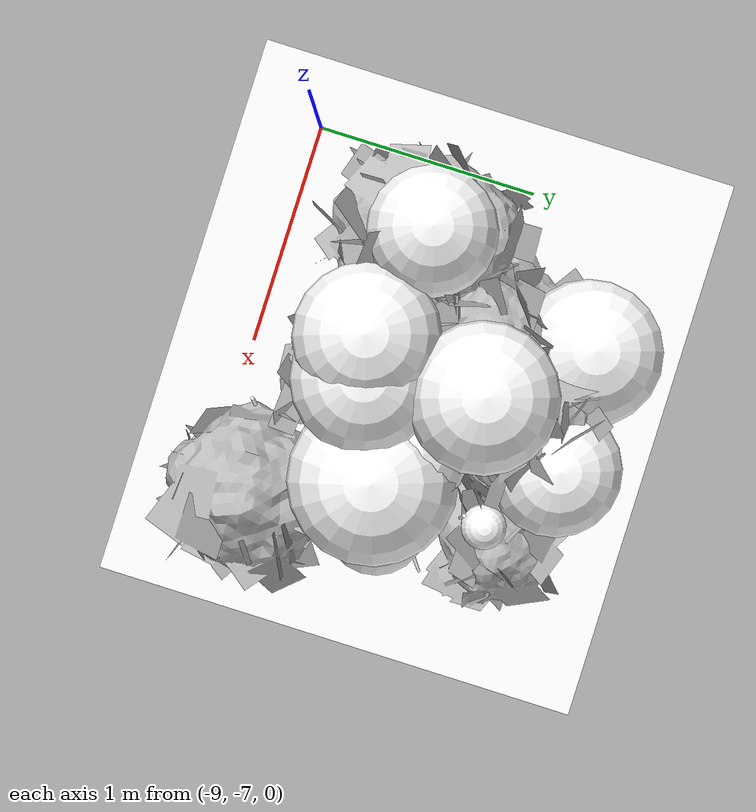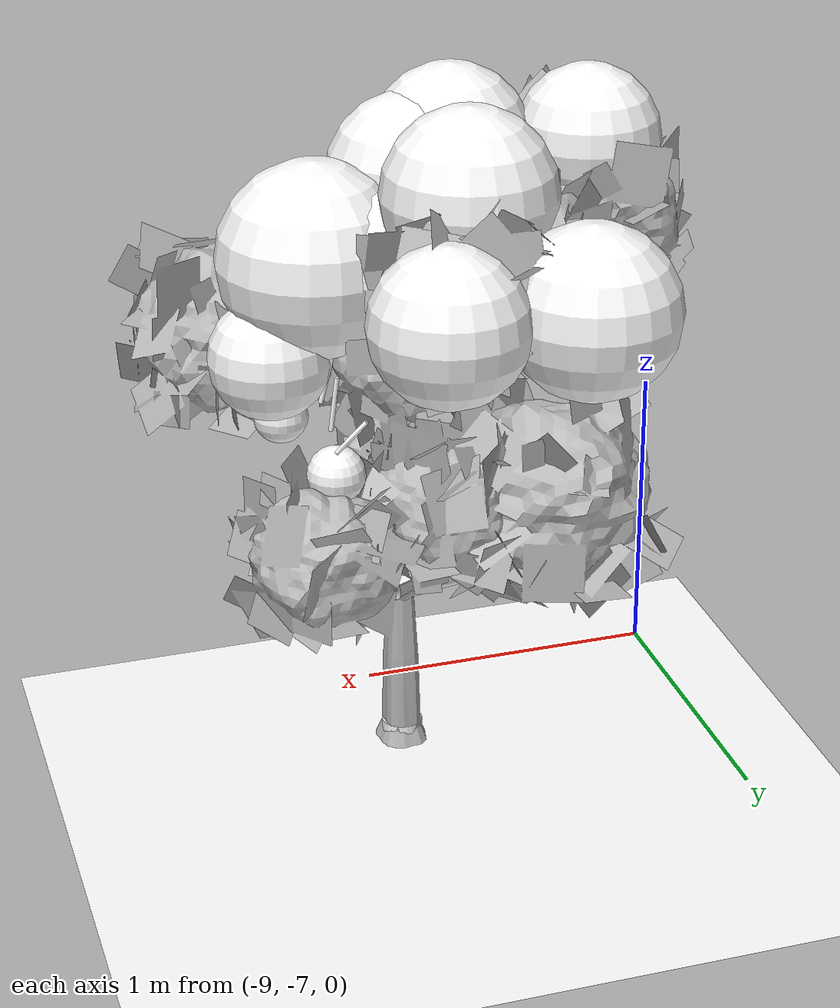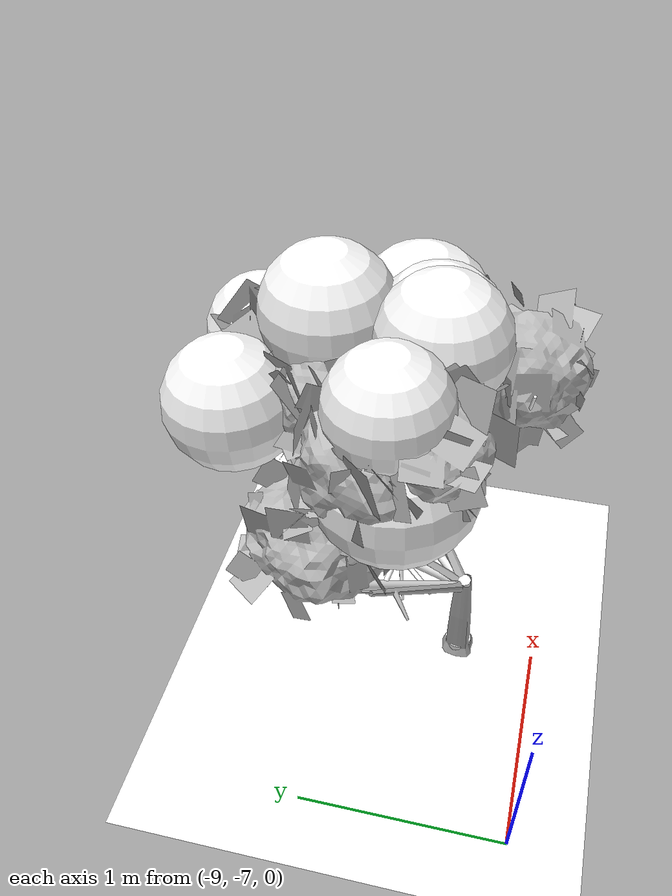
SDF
<sdf version="1.11">
 <world name="peach_orchard">
  <model name="ground">
   <static>true</static>
   <link name="link">
    <visual name="soil">
     <geometry><plane><normal>0 0 1</normal><size>32 22</size></plane></geometry>
     <material>
      <ambient>1 1 1 1</ambient>
      <diffuse>1 1 1 1</diffuse>
      <specular>0.1 0.1 0.1 1</specular>
      <pbr>
       <metal>
        <albedo_map>textures/soil_albedo.png</albedo_map>
        <normal_map type="tangent">textures/soil_normal.png</normal_map>
        <roughness>0.95</roughness>
        <metalness>0</metalness>
       </metal>
      </pbr>
     </material>
    </visual>
    <collision name="c_soil">
     <geometry><plane><normal>0 0 1</normal><size>32 22</size></plane></geometry>
    </collision>
   </link>
  </model>
  <model name="tree_r0_t0">
   <pose>-8 -6.6 0 0 0 0</pose>
   <static>true</static>
   <link name="link">
    <visual name="tree_mesh">
     <pose>0 0 0 0 0 0.00424783</pose>
     <geometry>
      <mesh><uri>model://peach_sim/meshes/peach_tree_a.glb</uri><scale>1.01858 1.01858 1.01858</scale></mesh>
     </geometry>
    </visual>
    <visual name="trunk_0">
     <pose>0 0 0.163314 0 0 0</pose>
     <geometry><cylinder><radius>0.0460757</radius><length>0.326629</length></cylinder></geometry>
     <material>
      <ambient>1 1 1 1</ambient>
      <diffuse>1 1 1 1</diffuse>
      <specular>0.1 0.1 0.1 1</specular>
      <pbr>
       <metal>
        <albedo_map>textures/bark_albedo.png</albedo_map>
        <normal_map type="tangent">textures/bark_normal.png</normal_map>
        <roughness>0.9</roughness>
        <metalness>0</metalness>
       </metal>
      </pbr>
     </material>
    </visual>
    <collision name="c_trunk_0">
     <pose>0 0 0.163314 0 0 0</pose>
     <geometry><cylinder><radius>0.0460757</radius><length>0.326629</length></cylinder></geometry>
    </collision>
    <visual name="trunk_1">
     <pose>0 0 0.46025 0 0 0</pose>
     <geometry><cylinder><radius>0.0331745</radius><length>0.267242</length></cylinder></geometry>
     <material>
      <ambient>1 1 1 1</ambient>
      <diffuse>1 1 1 1</diffuse>
      <specular>0.1 0.1 0.1 1</specular>
      <pbr>
       <metal>
        <albedo_map>textures/bark_albedo.png</albedo_map>
        <normal_map type="tangent">textures/bark_normal.png</normal_map>
        <roughness>0.9</roughness>
        <metalness>0</metalness>
       </metal>
      </pbr>
     </material>
    </visual>
    <collision name="c_trunk_1">
     <pose>0 0 0.46025 0 0 0</pose>
     <geometry><cylinder><radius>0.0331745</radius><length>0.267242</length></cylinder></geometry>
    </collision>
    <visual name="root_flare">
     <pose>0 0 0.035 0 0 0</pose>
     <geometry><cylinder><radius>0.0668097</radius><length>0.07</length></cylinder></geometry>
     <material>
      <ambient>1 1 1 1</ambient>
      <diffuse>1 1 1 1</diffuse>
      <specular>0.1 0.1 0.1 1</specular>
      <pbr>
       <metal>
        <albedo_map>textures/bark_albedo.png</albedo_map>
        <normal_map type="tangent">textures/bark_normal.png</normal_map>
        <roughness>0.95</roughness>
        <metalness>0</metalness>
       </metal>
      </pbr>
     </material>
    </visual>
    <visual name="scaffold_0">
     <pose>-0.0405091 0.339771 0.764963 0 1.00229 1.68946</pose>
     <geometry><cylinder><radius>0.022</radius><length>0.812089</length></cylinder></geometry>
     <material>
      <ambient>1 1 1 1</ambient>
      <diffuse>1 1 1 1</diffuse>
      <specular>0.1 0.1 0.1 1</specular>
      <pbr>
       <metal>
        <albedo_map>textures/bark_albedo.png</albedo_map>
        <normal_map type="tangent">textures/bark_normal.png</normal_map>
        <roughness>0.9</roughness>
        <metalness>0</metalness>
       </metal>
      </pbr>
     </material>
    </visual>
    <collision name="c_scaffold_0">
     <pose>-0.0405091 0.339771 0.764963 0 1.00229 1.68946</pose>
     <geometry><cylinder><radius>0.022</radius><length>0.812089</length></cylinder></geometry>
    </collision>
    <visual name="branchlet_0_0">
     <pose>-0.112781 0.222014 0.727966 0 1.73849 -2.26043</pose>
     <geometry><cylinder><radius>0.012</radius><length>0.240414</length></cylinder></geometry>
     <material>
      <ambient>1 1 1 1</ambient>
      <diffuse>1 1 1 1</diffuse>
      <specular>0.1 0.1 0.1 1</specular>
      <pbr>
       <metal>
        <albedo_map>textures/bark_albedo.png</albedo_map>
        <normal_map type="tangent">textures/bark_normal.png</normal_map>
        <roughness>0.9</roughness>
        <metalness>0</metalness>
       </metal>
      </pbr>
     </material>
    </visual>
    <visual name="branchlet_0_1">
     <pose>-0.0352857 0.490804 1.02807 0 0.147237 -0.186205</pose>
     <geometry><cylinder><radius>0.012</radius><length>0.32967</length></cylinder></geometry>
     <material>
      <ambient>1 1 1 1</ambient>
      <diffuse>1 1 1 1</diffuse>
      <specular>0.1 0.1 0.1 1</specular>
      <pbr>
       <metal>
        <albedo_map>textures/bark_albedo.png</albedo_map>
        <normal_map type="tangent">textures/bark_normal.png</normal_map>
        <roughness>0.9</roughness>
        <metalness>0</metalness>
       </metal>
      </pbr>
     </material>
    </visual>
    <visual name="branchlet_0_2">
     <pose>-0.0392614 0.322034 0.909342 0 0.825081 -1.46077</pose>
     <geometry><cylinder><radius>0.012</radius><length>0.271349</length></cylinder></geometry>
     <material>
      <ambient>1 1 1 1</ambient>
      <diffuse>1 1 1 1</diffuse>
      <specular>0.1 0.1 0.1 1</specular>
      <pbr>
       <metal>
        <albedo_map>textures/bark_albedo.png</albedo_map>
        <normal_map type="tangent">textures/bark_normal.png</normal_map>
        <roughness>0.9</roughness>
        <metalness>0</metalness>
       </metal>
      </pbr>
     </material>
    </visual>
    <visual name="scaffold_1">
     <pose>0.201215 0.317295 0.767262 0 1.03929 1.00564</pose>
     <geometry><cylinder><radius>0.022</radius><length>0.87169</length></cylinder></geometry>
     <material>
      <ambient>1 1 1 1</ambient>
      <diffuse>1 1 1 1</diffuse>
      <specular>0.1 0.1 0.1 1</specular>
      <pbr>
       <metal>
        <albedo_map>textures/bark_albedo.png</albedo_map>
        <normal_map type="tangent">textures/bark_normal.png</normal_map>
        <roughness>0.9</roughness>
        <metalness>0</metalness>
       </metal>
      </pbr>
     </material>
    </visual>
    <collision name="c_scaffold_1">
     <pose>0.201215 0.317295 0.767262 0 1.03929 1.00564</pose>
     <geometry><cylinder><radius>0.022</radius><length>0.87169</length></cylinder></geometry>
    </collision>
    <visual name="branchlet_1_0">
     <pose>0.417614 0.417147 0.873596 0 1.8249 -0.868604</pose>
     <geometry><cylinder><radius>0.012</radius><length>0.279913</length></cylinder></geometry>
     <material>
      <ambient>1 1 1 1</ambient>
      <diffuse>1 1 1 1</diffuse>
      <specular>0.1 0.1 0.1 1</specular>
      <pbr>
       <metal>
        <albedo_map>textures/bark_albedo.png</albedo_map>
        <normal_map type="tangent">textures/bark_normal.png</normal_map>
        <roughness>0.9</roughness>
        <metalness>0</metalness>
       </metal>
      </pbr>
     </material>
    </visual>
    <visual name="branchlet_1_1">
     <pose>0.183877 0.418143 0.953932 0 1.11977 -2.63989</pose>
     <geometry><cylinder><radius>0.012</radius><length>0.315938</length></cylinder></geometry>
     <material>
      <ambient>1 1 1 1</ambient>
      <diffuse>1 1 1 1</diffuse>
      <specular>0.1 0.1 0.1 1</specular>
      <pbr>
       <metal>
        <albedo_map>textures/bark_albedo.png</albedo_map>
        <normal_map type="tangent">textures/bark_normal.png</normal_map>
        <roughness>0.9</roughness>
        <metalness>0</metalness>
       </metal>
      </pbr>
     </material>
    </visual>
    <visual name="scaffold_2">
     <pose>-0.253912 0.24254 0.828736 0 0.893516 2.3791</pose>
     <geometry><cylinder><radius>0.022</radius><length>0.901183</length></cylinder></geometry>
     <material>
      <ambient>1 1 1 1</ambient>
      <diffuse>1 1 1 1</diffuse>
      <specular>0.1 0.1 0.1 1</specular>
      <pbr>
       <metal>
        <albedo_map>textures/bark_albedo.png</albedo_map>
        <normal_map type="tangent">textures/bark_normal.png</normal_map>
        <roughness>0.9</roughness>
        <metalness>0</metalness>
       </metal>
      </pbr>
     </material>
    </visual>
    <collision name="c_scaffold_2">
     <pose>-0.253912 0.24254 0.828736 0 0.893516 2.3791</pose>
     <geometry><cylinder><radius>0.022</radius><length>0.901183</length></cylinder></geometry>
    </collision>
    <visual name="branchlet_2_0">
     <pose>-0.170131 0.287708 0.95942 0 1.32319 -0.187133</pose>
     <geometry><cylinder><radius>0.012</radius><length>0.343222</length></cylinder></geometry>
     <material>
      <ambient>1 1 1 1</ambient>
      <diffuse>1 1 1 1</diffuse>
      <specular>0.1 0.1 0.1 1</specular>
      <pbr>
       <metal>
        <albedo_map>textures/bark_albedo.png</albedo_map>
        <normal_map type="tangent">textures/bark_normal.png</normal_map>
        <roughness>0.9</roughness>
        <metalness>0</metalness>
       </metal>
      </pbr>
     </material>
    </visual>
    <visual name="branchlet_2_1">
     <pose>-0.303816 0.410785 0.998983 0 0.988184 0.954062</pose>
     <geometry><cylinder><radius>0.012</radius><length>0.211072</length></cylinder></geometry>
     <material>
      <ambient>1 1 1 1</ambient>
      <diffuse>1 1 1 1</diffuse>
      <specular>0.1 0.1 0.1 1</specular>
      <pbr>
       <metal>
        <albedo_map>textures/bark_albedo.png</albedo_map>
        <normal_map type="tangent">textures/bark_normal.png</normal_map>
        <roughness>0.9</roughness>
        <metalness>0</metalness>
       </metal>
      </pbr>
     </material>
    </visual>
    <visual name="canopy_0">
     <pose>-0.301224 0.882309 1.85743 0 0 0</pose>
     <geometry><sphere><radius>0.256106</radius></sphere></geometry>
     <material>
      <ambient>1 1 1 1</ambient>
      <diffuse>1 1 1 1</diffuse>
      <specular>0.1 0.1 0.1 1</specular>
      <pbr>
       <metal>
        <albedo_map>textures/leaf_albedo.png</albedo_map>
        <normal_map type="tangent">textures/leaf_normal.png</normal_map>
        <roughness>0.85</roughness>
        <metalness>0</metalness>
       </metal>
      </pbr>
     </material>
    </visual>
    <collision name="c_canopy_0">
     <pose>-0.301224 0.882309 1.85743 0 0 0</pose>
     <geometry><sphere><radius>0.256106</radius></sphere></geometry>
    </collision>
    <visual name="canopy_1">
     <pose>0.215076 0.372278 1.87598 0 0 0</pose>
     <geometry><sphere><radius>0.2268</radius></sphere></geometry>
     <material>
      <ambient>1 1 1 1</ambient>
      <diffuse>1 1 1 1</diffuse>
      <specular>0.1 0.1 0.1 1</specular>
      <pbr>
       <metal>
        <albedo_map>textures/leaf_albedo.png</albedo_map>
        <normal_map type="tangent">textures/leaf_normal.png</normal_map>
        <roughness>0.85</roughness>
        <metalness>0</metalness>
       </metal>
      </pbr>
     </material>
    </visual>
    <collision name="c_canopy_1">
     <pose>0.215076 0.372278 1.87598 0 0 0</pose>
     <geometry><sphere><radius>0.2268</radius></sphere></geometry>
    </collision>
    <visual name="canopy_2">
     <pose>-0.493958 0.226708 1.80144 0 0 0</pose>
     <geometry><sphere><radius>0.311001</radius></sphere></geometry>
     <material>
      <ambient>1 1 1 1</ambient>
      <diffuse>1 1 1 1</diffuse>
      <specular>0.1 0.1 0.1 1</specular>
      <pbr>
       <metal>
        <albedo_map>textures/leaf_albedo.png</albedo_map>
        <normal_map type="tangent">textures/leaf_normal.png</normal_map>
        <roughness>0.85</roughness>
        <metalness>0</metalness>
       </metal>
      </pbr>
     </material>
    </visual>
    <collision name="c_canopy_2">
     <pose>-0.493958 0.226708 1.80144 0 0 0</pose>
     <geometry><sphere><radius>0.311001</radius></sphere></geometry>
    </collision>
    <visual name="canopy_3">
     <pose>0.0147764 0.179122 2.05022 0 0 0</pose>
     <geometry><sphere><radius>0.254066</radius></sphere></geometry>
     <material>
      <ambient>1 1 1 1</ambient>
      <diffuse>1 1 1 1</diffuse>
      <specular>0.1 0.1 0.1 1</specular>
      <pbr>
       <metal>
        <albedo_map>textures/leaf_albedo.png</albedo_map>
        <normal_map type="tangent">textures/leaf_normal.png</normal_map>
        <roughness>0.85</roughness>
        <metalness>0</metalness>
       </metal>
      </pbr>
     </material>
    </visual>
    <visual name="canopy_4">
     <pose>0.338598 0.303025 1.87032 0 0 0</pose>
     <geometry><sphere><radius>0.297103</radius></sphere></geometry>
     <material>
      <ambient>1 1 1 1</ambient>
      <diffuse>1 1 1 1</diffuse>
      <specular>0.1 0.1 0.1 1</specular>
      <pbr>
       <metal>
        <albedo_map>textures/leaf_albedo.png</albedo_map>
        <normal_map type="tangent">textures/leaf_normal.png</normal_map>
        <roughness>0.85</roughness>
        <metalness>0</metalness>
       </metal>
      </pbr>
     </material>
    </visual>
    <visual name="canopy_5">
     <pose>-0.513104 0.24499 2.14086 0 0 0</pose>
     <geometry><sphere><radius>0.220146</radius></sphere></geometry>
     <material>
      <ambient>1 1 1 1</ambient>
      <diffuse>1 1 1 1</diffuse>
      <specular>0.1 0.1 0.1 1</specular>
      <pbr>
       <metal>
        <albedo_map>textures/leaf_albedo.png</albedo_map>
        <normal_map type="tangent">textures/leaf_normal.png</normal_map>
        <roughness>0.85</roughness>
        <metalness>0</metalness>
       </metal>
      </pbr>
     </material>
    </visual>
    <visual name="canopy_6">
     <pose>-0.0416084 0.570118 2.11844 0 0 0</pose>
     <geometry><sphere><radius>0.257464</radius></sphere></geometry>
     <material>
      <ambient>1 1 1 1</ambient>
      <diffuse>1 1 1 1</diffuse>
      <specular>0.1 0.1 0.1 1</specular>
      <pbr>
       <metal>
        <albedo_map>textures/leaf_albedo.png</albedo_map>
        <normal_map type="tangent">textures/leaf_normal.png</normal_map>
        <roughness>0.85</roughness>
        <metalness>0</metalness>
       </metal>
      </pbr>
     </material>
    </visual>
    <visual name="canopy_7">
     <pose>0.497743 0.361038 1.60311 0 0 0</pose>
     <geometry><sphere><radius>0.184391</radius></sphere></geometry>
     <material>
      <ambient>1 1 1 1</ambient>
      <diffuse>1 1 1 1</diffuse>
      <specular>0.1 0.1 0.1 1</specular>
      <pbr>
       <metal>
        <albedo_map>textures/leaf_albedo.png</albedo_map>
        <normal_map type="tangent">textures/leaf_normal.png</normal_map>
        <roughness>0.85</roughness>
        <metalness>0</metalness>
       </metal>
      </pbr>
     </material>
    </visual>
    <visual name="canopy_8">
     <pose>-0.119655 0.143928 2.12085 0 0 0</pose>
     <geometry><sphere><radius>0.249111</radius></sphere></geometry>
     <material>
      <ambient>1 1 1 1</ambient>
      <diffuse>1 1 1 1</diffuse>
      <specular>0.1 0.1 0.1 1</specular>
      <pbr>
       <metal>
        <albedo_map>textures/leaf_albedo.png</albedo_map>
        <normal_map type="tangent">textures/leaf_normal.png</normal_map>
        <roughness>0.85</roughness>
        <metalness>0</metalness>
       </metal>
      </pbr>
     </material>
    </visual>
    <visual name="canopy_9">
     <pose>0.116707 0.889266 1.86647 0 0 0</pose>
     <geometry><sphere><radius>0.232557</radius></sphere></geometry>
     <material>
      <ambient>1 1 1 1</ambient>
      <diffuse>1 1 1 1</diffuse>
      <specular>0.1 0.1 0.1 1</specular>
      <pbr>
       <metal>
        <albedo_map>textures/leaf_albedo.png</albedo_map>
        <normal_map type="tangent">textures/leaf_normal.png</normal_map>
        <roughness>0.85</roughness>
        <metalness>0</metalness>
       </metal>
      </pbr>
     </material>
    </visual>
    <visual name="foliage_0">
     <pose>0.454566 0.291201 1.38165 0 0 0</pose>
     <geometry><sphere><radius>0.0831392</radius></sphere></geometry>
     <material>
      <ambient>1 1 1 1</ambient>
      <diffuse>1 1 1 1</diffuse>
      <specular>0.1 0.1 0.1 1</specular>
      <pbr>
       <metal>
        <albedo_map>textures/leaf_albedo.png</albedo_map>
        <normal_map type="tangent">textures/leaf_normal.png</normal_map>
        <roughness>0.85</roughness>
        <metalness>0</metalness>
       </metal>
      </pbr>
     </material>
    </visual>
    <visual name="foliage_4">
     <pose>0.405057 0.74439 1.39324 0 0 0</pose>
     <geometry><sphere><radius>0.0845656</radius></sphere></geometry>
     <material>
      <ambient>1 1 1 1</ambient>
      <diffuse>1 1 1 1</diffuse>
      <specular>0.1 0.1 0.1 1</specular>
      <pbr>
       <metal>
        <albedo_map>textures/leaf_albedo.png</albedo_map>
        <normal_map type="tangent">textures/leaf_normal.png</normal_map>
        <roughness>0.85</roughness>
        <metalness>0</metalness>
       </metal>
      </pbr>
     </material>
    </visual>
    <visual name="foliage_8">
     <pose>0.225068 0.0960242 1.40116 0 0 0</pose>
     <geometry><sphere><radius>0.0991229</radius></sphere></geometry>
     <material>
      <ambient>1 1 1 1</ambient>
      <diffuse>1 1 1 1</diffuse>
      <specular>0.1 0.1 0.1 1</specular>
      <pbr>
       <metal>
        <albedo_map>textures/leaf_albedo.png</albedo_map>
        <normal_map type="tangent">textures/leaf_normal.png</normal_map>
        <roughness>0.85</roughness>
        <metalness>0</metalness>
       </metal>
      </pbr>
     </material>
    </visual>
    <visual name="twig_0">
     <pose>0.338747 0.284009 1.56828 0 0.334398 -2.50144</pose>
     <geometry><cylinder><radius>0.007</radius><length>0.210615</length></cylinder></geometry>
     <material>
      <ambient>1 1 1 1</ambient>
      <diffuse>1 1 1 1</diffuse>
      <specular>0.1 0.1 0.1 1</specular>
      <pbr>
       <metal>
        <albedo_map>textures/bark_albedo.png</albedo_map>
        <normal_map type="tangent">textures/bark_normal.png</normal_map>
        <roughness>0.9</roughness>
        <metalness>0</metalness>
       </metal>
      </pbr>
     </material>
    </visual>
    <visual name="twig_1">
     <pose>0.324876 0.360595 1.50609 0 0.658661 2.6801</pose>
     <geometry><cylinder><radius>0.007</radius><length>0.135522</length></cylinder></geometry>
     <material>
      <ambient>1 1 1 1</ambient>
      <diffuse>1 1 1 1</diffuse>
      <specular>0.1 0.1 0.1 1</specular>
      <pbr>
       <metal>
        <albedo_map>textures/bark_albedo.png</albedo_map>
        <normal_map type="tangent">textures/bark_normal.png</normal_map>
        <roughness>0.9</roughness>
        <metalness>0</metalness>
       </metal>
      </pbr>
     </material>
    </visual>
    <visual name="twig_2">
     <pose>0.347337 0.448566 1.5714 0 0.251135 3.0998</pose>
     <geometry><cylinder><radius>0.007</radius><length>0.188275</length></cylinder></geometry>
     <material>
      <ambient>1 1 1 1</ambient>
      <diffuse>1 1 1 1</diffuse>
      <specular>0.1 0.1 0.1 1</specular>
      <pbr>
       <metal>
        <albedo_map>textures/bark_albedo.png</albedo_map>
        <normal_map type="tangent">textures/bark_normal.png</normal_map>
        <roughness>0.9</roughness>
        <metalness>0</metalness>
       </metal>
      </pbr>
     </material>
    </visual>
    <visual name="twig_3">
     <pose>0.383063 0.648681 1.56625 0 0.125123 3.03377</pose>
     <geometry><cylinder><radius>0.007</radius><length>0.163781</length></cylinder></geometry>
     <material>
      <ambient>1 1 1 1</ambient>
      <diffuse>1 1 1 1</diffuse>
      <specular>0.1 0.1 0.1 1</specular>
      <pbr>
       <metal>
        <albedo_map>textures/bark_albedo.png</albedo_map>
        <normal_map type="tangent">textures/bark_normal.png</normal_map>
        <roughness>0.9</roughness>
        <metalness>0</metalness>
       </metal>
      </pbr>
     </material>
    </visual>
    <visual name="twig_4">
     <pose>0.386243 0.848802 1.5533 0 0.721229 2.78213</pose>
     <geometry><cylinder><radius>0.007</radius><length>0.128853</length></cylinder></geometry>
     <material>
      <ambient>1 1 1 1</ambient>
      <diffuse>1 1 1 1</diffuse>
      <specular>0.1 0.1 0.1 1</specular>
      <pbr>
       <metal>
        <albedo_map>textures/bark_albedo.png</albedo_map>
        <normal_map type="tangent">textures/bark_normal.png</normal_map>
        <roughness>0.9</roughness>
        <metalness>0</metalness>
       </metal>
      </pbr>
     </material>
    </visual>
    <visual name="twig_5">
     <pose>0.216551 -0.184125 1.58977 0 0.280092 -2.645</pose>
     <geometry><cylinder><radius>0.007</radius><length>0.126573</length></cylinder></geometry>
     <material>
      <ambient>1 1 1 1</ambient>
      <diffuse>1 1 1 1</diffuse>
      <specular>0.1 0.1 0.1 1</specular>
      <pbr>
       <metal>
        <albedo_map>textures/bark_albedo.png</albedo_map>
        <normal_map type="tangent">textures/bark_normal.png</normal_map>
        <roughness>0.9</roughness>
        <metalness>0</metalness>
       </metal>
      </pbr>
     </material>
    </visual>
    <visual name="twig_6">
     <pose>0.159085 -0.093739 1.61114 0 0.676713 -2.83338</pose>
     <geometry><cylinder><radius>0.007</radius><length>0.204184</length></cylinder></geometry>
     <material>
      <ambient>1 1 1 1</ambient>
      <diffuse>1 1 1 1</diffuse>
      <specular>0.1 0.1 0.1 1</specular>
      <pbr>
       <metal>
        <albedo_map>textures/bark_albedo.png</albedo_map>
        <normal_map type="tangent">textures/bark_normal.png</normal_map>
        <roughness>0.9</roughness>
        <metalness>0</metalness>
       </metal>
      </pbr>
     </material>
    </visual>
    <visual name="twig_7">
     <pose>0.211926 -0.0429447 1.55706 0 0.650616 -3.04387</pose>
     <geometry><cylinder><radius>0.007</radius><length>0.130131</length></cylinder></geometry>
     <material>
      <ambient>1 1 1 1</ambient>
      <diffuse>1 1 1 1</diffuse>
      <specular>0.1 0.1 0.1 1</specular>
      <pbr>
       <metal>
        <albedo_map>textures/bark_albedo.png</albedo_map>
        <normal_map type="tangent">textures/bark_normal.png</normal_map>
        <roughness>0.9</roughness>
        <metalness>0</metalness>
       </metal>
      </pbr>
     </material>
    </visual>
    <visual name="twig_8">
     <pose>0.224372 0.116166 1.57143 0 0.574066 2.64883</pose>
     <geometry><cylinder><radius>0.007</radius><length>0.132598</length></cylinder></geometry>
     <material>
      <ambient>1 1 1 1</ambient>
      <diffuse>1 1 1 1</diffuse>
      <specular>0.1 0.1 0.1 1</specular>
      <pbr>
       <metal>
        <albedo_map>textures/bark_albedo.png</albedo_map>
        <normal_map type="tangent">textures/bark_normal.png</normal_map>
        <roughness>0.9</roughness>
        <metalness>0</metalness>
       </metal>
      </pbr>
     </material>
    </visual>
   </link>
  </model>
 </world>
</sdf>
